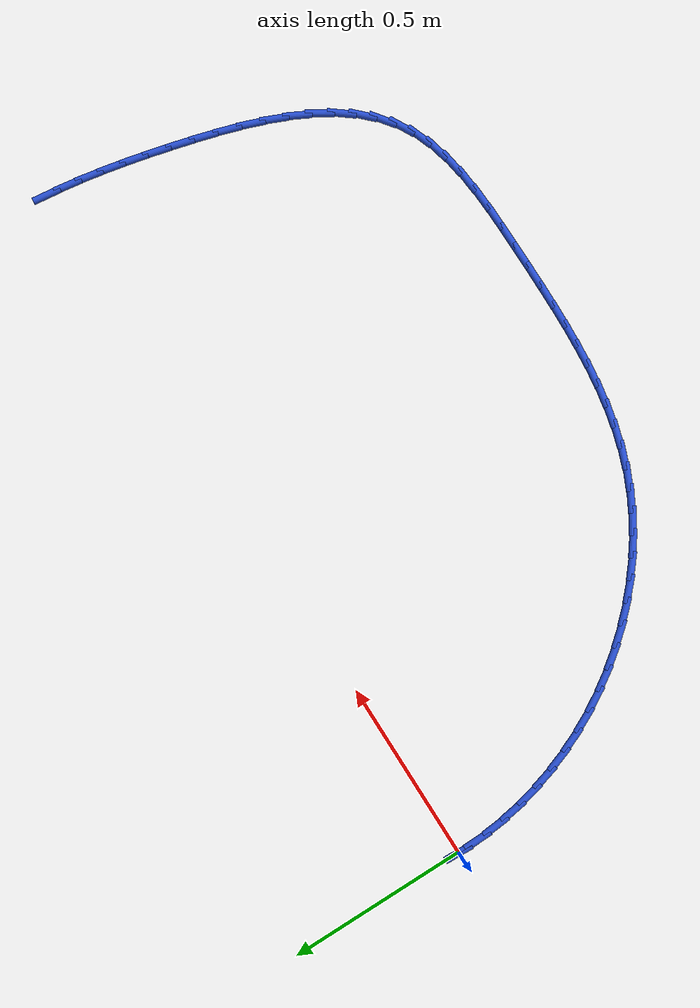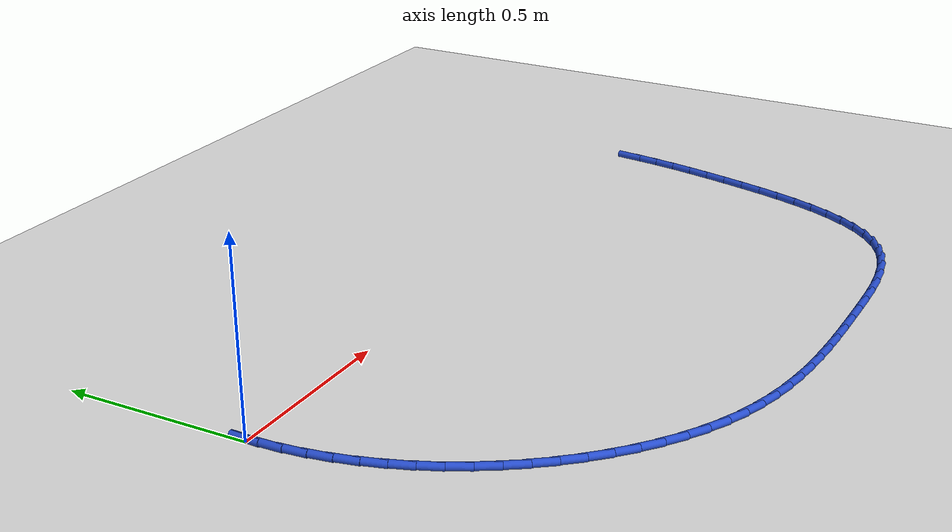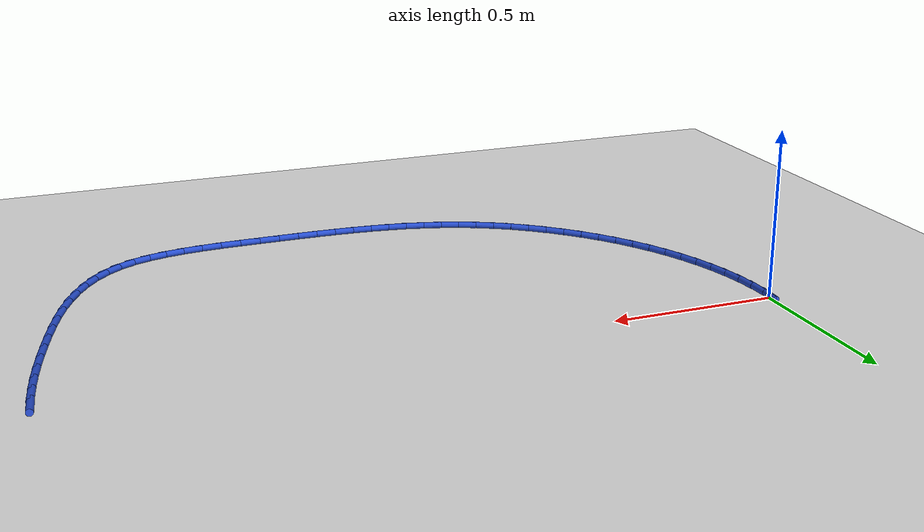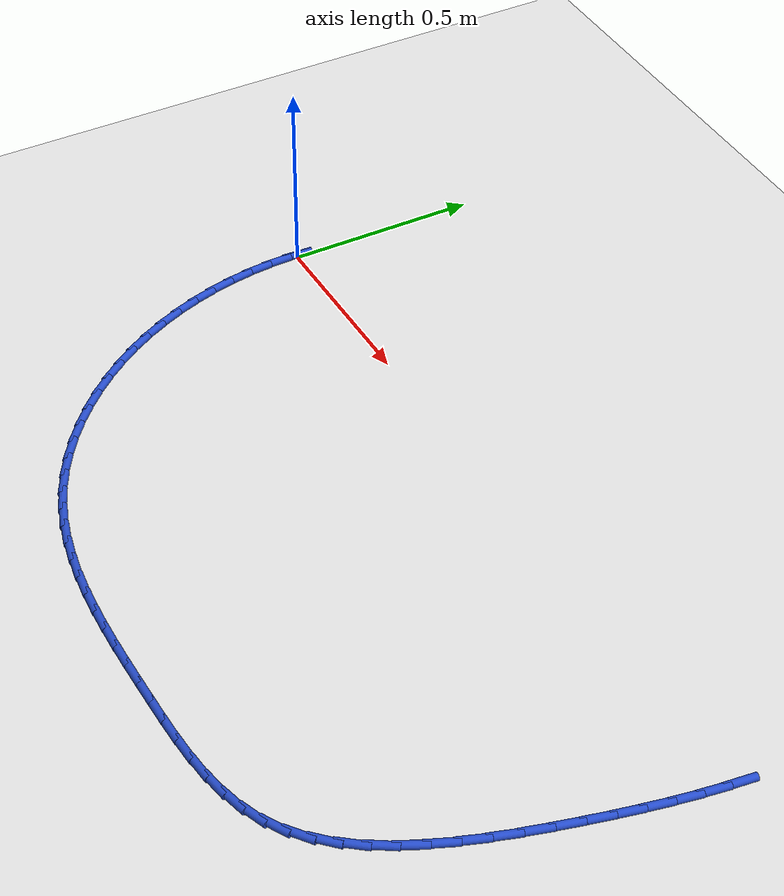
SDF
<sdf version="1.6">
 <world name="default">
  <model name="ground_plane">
   <static>1</static>
   <link name="link">
    <collision name="collision">
     <geometry><plane><normal>0 0 1</normal><size>100 100</size></plane></geometry>
     <surface><friction><ode><mu>100</mu><mu2>50</mu2></ode></friction></surface>
    </collision>
    <visual name="visual">
     <cast_shadows>0</cast_shadows>
     <geometry><plane><normal>0 0 1</normal><size>100 100</size></plane></geometry>
     <material>
      <script><uri>file://media/materials/scripts/gazebo.material</uri><name>Gazebo/WhiteGlow</name></script>
     </material>
    </visual>
   </link>
  </model>
  <model name="line">
   <link name="link_0">
    <pose>3.469446951953614e-17 1.1102230246251565e-16 0.01 0 1.57 1.5262545490121078</pose>
    <collision name="collision">
     <geometry><cylinder><radius>0.01</radius><length>0.08</length></cylinder></geometry>
    </collision>
    <visual name="visual">
     <material>
      <script><name>Gazebo/Blue</name><uri>file://media/materials/scripts/gazebo.material</uri></script>
     </material>
     <geometry><cylinder><radius>0.01</radius><length>0.08</length></cylinder></geometry>
    </visual>
   </link>
   <link name="link_56">
    <pose>2.064700965908474 -0.008207547837002976 0.01 0 1.57 1.4524794912709933</pose>
    <collision name="collision">
     <geometry><cylinder><radius>0.01</radius><length>0.08</length></cylinder></geometry>
    </collision>
    <visual name="visual">
     <material>
      <script><name>Gazebo/Blue</name><uri>file://media/materials/scripts/gazebo.material</uri></script>
     </material>
     <geometry><cylinder><radius>0.01</radius><length>0.08</length></cylinder></geometry>
    </visual>
   </link>
   <link name="link_57">
    <pose>2.0573905796232284 -0.06970549091279976 0.01 0 1.57 1.4186688954242923</pose>
    <collision name="collision">
     <geometry><cylinder><radius>0.01</radius><length>0.08</length></cylinder></geometry>
    </collision>
    <visual name="visual">
     <material>
      <script><name>Gazebo/Blue</name><uri>file://media/materials/scripts/gazebo.material</uri></script>
     </material>
     <geometry><cylinder><radius>0.01</radius><length>0.08</length></cylinder></geometry>
    </visual>
   </link>
   <link name="link_58">
    <pose>2.047861789207606 -0.13185844505326416 0.01 0 1.57 1.389663928427484</pose>
    <collision name="collision">
     <geometry><cylinder><radius>0.01</radius><length>0.08</length></cylinder></geometry>
    </collision>
    <visual name="visual">
     <material>
      <script><name>Gazebo/Blue</name><uri>file://media/materials/scripts/gazebo.material</uri></script>
     </material>
     <geometry><cylinder><radius>0.01</radius><length>0.08</length></cylinder></geometry>
    </visual>
   </link>
   <link name="link_59">
    <pose>2.036372148140233 -0.19459548785910924 0.01 0 1.57 1.3651613671115268</pose>
    <collision name="collision">
     <geometry><cylinder><radius>0.01</radius><length>0.08</length></cylinder></geometry>
    </collision>
    <visual name="visual">
     <material>
      <script><name>Gazebo/Blue</name><uri>file://media/materials/scripts/gazebo.material</uri></script>
     </material>
     <geometry><cylinder><radius>0.01</radius><length>0.08</length></cylinder></geometry>
    </visual>
   </link>
   <link name="link_60">
    <pose>2.0231792098997348 -0.2578456969310451 0.01 0 1.57 1.3448857429082337</pose>
    <collision name="collision">
     <geometry><cylinder><radius>0.01</radius><length>0.08</length></cylinder></geometry>
    </collision>
    <visual name="visual">
     <material>
      <script><name>Gazebo/Blue</name><uri>file://media/materials/scripts/gazebo.material</uri></script>
     </material>
     <geometry><cylinder><radius>0.01</radius><length>0.08</length></cylinder></geometry>
    </visual>
   </link>
   <link name="link_61">
    <pose>2.008540527964736 -0.3215381498697848 0.01 0 1.57 1.328590288155894</pose>
    <collision name="collision">
     <geometry><cylinder><radius>0.01</radius><length>0.08</length></cylinder></geometry>
    </collision>
    <visual name="visual">
     <material>
      <script><name>Gazebo/Blue</name><uri>file://media/materials/scripts/gazebo.material</uri></script>
     </material>
     <geometry><cylinder><radius>0.01</radius><length>0.08</length></cylinder></geometry>
    </visual>
   </link>
   <link name="link_62">
    <pose>1.9927132762824618 -0.3856015364147973 0.01 0 1.57 1.3130658221895595</pose>
    <collision name="collision">
     <geometry><cylinder><radius>0.01</radius><length>0.08</length></cylinder></geometry>
    </collision>
    <visual name="visual">
     <material>
      <script><name>Gazebo/Blue</name><uri>file://media/materials/scripts/gazebo.material</uri></script>
     </material>
     <geometry><cylinder><radius>0.01</radius><length>0.08</length></cylinder></geometry>
    </visual>
   </link>
   <link name="link_63">
    <pose>1.9757915685853005 -0.44979790729359825 0.01 0 1.57 1.2903435314525462</pose>
    <collision name="collision">
     <geometry><cylinder><radius>0.01</radius><length>0.08</length></cylinder></geometry>
    </collision>
    <visual name="visual">
     <material>
      <script><name>Gazebo/Blue</name><uri>file://media/materials/scripts/gazebo.material</uri></script>
     </material>
     <geometry><cylinder><radius>0.01</radius><length>0.08</length></cylinder></geometry>
    </visual>
   </link>
   <link name="link_64">
    <pose>1.9574529943661898 -0.5134636472440807 0.01 0 1.57 1.2585666985986312</pose>
    <collision name="collision">
     <geometry><cylinder><radius>0.01</radius><length>0.08</length></cylinder></geometry>
    </collision>
    <visual name="visual">
     <material>
      <script><name>Gazebo/Blue</name><uri>file://media/materials/scripts/gazebo.material</uri></script>
     </material>
     <geometry><cylinder><radius>0.01</radius><length>0.08</length></cylinder></geometry>
    </visual>
   </link>
   <link name="link_65">
    <pose>1.937309590172493 -0.5758681493220045 0.01 0 1.57 1.2166564524213328</pose>
    <collision name="collision">
     <geometry><cylinder><radius>0.01</radius><length>0.08</length></cylinder></geometry>
    </collision>
    <visual name="visual">
     <material>
      <script><name>Gazebo/Blue</name><uri>file://media/materials/scripts/gazebo.material</uri></script>
     </material>
     <geometry><cylinder><radius>0.01</radius><length>0.08</length></cylinder></geometry>
    </visual>
   </link>
   <link name="link_66">
    <pose>1.914973392551574 -0.6362808065831301 0.01 0 1.57 1.163087759709</pose>
    <collision name="collision">
     <geometry><cylinder><radius>0.01</radius><length>0.08</length></cylinder></geometry>
    </collision>
    <visual name="visual">
     <material>
      <script><name>Gazebo/Blue</name><uri>file://media/materials/scripts/gazebo.material</uri></script>
     </material>
     <geometry><cylinder><radius>0.01</radius><length>0.08</length></cylinder></geometry>
    </visual>
   </link>
   <link name="link_67">
    <pose>1.890056438050796 -0.6939710120832154 0.01 0 1.57 1.095898068814864</pose>
    <collision name="collision">
     <geometry><cylinder><radius>0.01</radius><length>0.08</length></cylinder></geometry>
    </collision>
    <visual name="visual">
     <material>
      <script><name>Gazebo/Blue</name><uri>file://media/materials/scripts/gazebo.material</uri></script>
     </material>
     <geometry><cylinder><radius>0.01</radius><length>0.08</length></cylinder></geometry>
    </visual>
   </link>
   <link name="link_68">
    <pose>1.8621707632175224 -0.7482081588780208 0.01 0 1.57 1.0127872258667208</pose>
    <collision name="collision">
     <geometry><cylinder><radius>0.01</radius><length>0.08</length></cylinder></geometry>
    </collision>
    <visual name="visual">
     <material>
      <script><name>Gazebo/Blue</name><uri>file://media/materials/scripts/gazebo.material</uri></script>
     </material>
     <geometry><cylinder><radius>0.01</radius><length>0.08</length></cylinder></geometry>
    </visual>
   </link>
   <link name="link_69">
    <pose>1.8309284045991177 -0.798261640023305 0.01 0 1.57 0.9114292481807235</pose>
    <collision name="collision">
     <geometry><cylinder><radius>0.01</radius><length>0.08</length></cylinder></geometry>
    </collision>
    <visual name="visual">
     <material>
      <script><name>Gazebo/Blue</name><uri>file://media/materials/scripts/gazebo.material</uri></script>
     </material>
     <geometry><cylinder><radius>0.01</radius><length>0.08</length></cylinder></geometry>
    </visual>
   </link>
   <link name="link_70">
    <pose>1.795941398742944 -0.8434008485748282 0.01 0 1.57 0.7901646157941891</pose>
    <collision name="collision">
     <geometry><cylinder><radius>0.01</radius><length>0.08</length></cylinder></geometry>
    </collision>
    <visual name="visual">
     <material>
      <script><name>Gazebo/Blue</name><uri>file://media/materials/scripts/gazebo.material</uri></script>
     </material>
     <geometry><cylinder><radius>0.01</radius><length>0.08</length></cylinder></geometry>
    </visual>
   </link>
   <link name="link_71">
    <pose>1.756821782196366 -0.8828951775883487 0.01 0 1.57 0.6491772067010905</pose>
    <collision name="collision">
     <geometry><cylinder><radius>0.01</radius><length>0.08</length></cylinder></geometry>
    </collision>
    <visual name="visual">
     <material>
      <script><name>Gazebo/Blue</name><uri>file://media/materials/scripts/gazebo.material</uri></script>
     </material>
     <geometry><cylinder><radius>0.01</radius><length>0.08</length></cylinder></geometry>
    </visual>
   </link>
   <link name="link_72">
    <pose>1.7131815915067468 -0.9160140201196273 0.01 0 1.57 0.494653188606681</pose>
    <collision name="collision">
     <geometry><cylinder><radius>0.01</radius><length>0.08</length></cylinder></geometry>
    </collision>
    <visual name="visual">
     <material>
      <script><name>Gazebo/Blue</name><uri>file://media/materials/scripts/gazebo.material</uri></script>
     </material>
     <geometry><cylinder><radius>0.01</radius><length>0.08</length></cylinder></geometry>
    </visual>
   </link>
   <link name="link_73">
    <pose>1.6647182570995018 -0.9421541780829987 0.01 0 1.57 0.3549905367317802</pose>
    <collision name="collision">
     <geometry><cylinder><radius>0.01</radius><length>0.08</length></cylinder></geometry>
    </collision>
    <visual name="visual">
     <material>
      <script><name>Gazebo/Blue</name><uri>file://media/materials/scripts/gazebo.material</uri></script>
     </material>
     <geometry><cylinder><radius>0.01</radius><length>0.08</length></cylinder></geometry>
    </visual>
   </link>
   <link name="link_74">
    <pose>1.6118308129963979 -0.9617592557564278 0.01 0 1.57 0.24306938376298684</pose>
    <collision name="collision">
     <geometry><cylinder><radius>0.01</radius><length>0.08</length></cylinder></geometry>
    </collision>
    <visual name="visual">
     <material>
      <script><name>Gazebo/Blue</name><uri>file://media/materials/scripts/gazebo.material</uri></script>
     </material>
     <geometry><cylinder><radius>0.01</radius><length>0.08</length></cylinder></geometry>
    </visual>
   </link>
   <link name="link_75">
    <pose>1.555262623487217 -0.9757866029863183 0.01 0 1.57 0.15685229934887338</pose>
    <collision name="collision">
     <geometry><cylinder><radius>0.01</radius><length>0.08</length></cylinder></geometry>
    </collision>
    <visual name="visual">
     <material>
      <script><name>Gazebo/Blue</name><uri>file://media/materials/scripts/gazebo.material</uri></script>
     </material>
     <geometry><cylinder><radius>0.01</radius><length>0.08</length></cylinder></geometry>
    </visual>
   </link>
   <link name="link_76">
    <pose>1.4957594304525643 -0.985197117017786 0.01 0 1.57 0.09300934365073187</pose>
    <collision name="collision">
     <geometry><cylinder><radius>0.01</radius><length>0.08</length></cylinder></geometry>
    </collision>
    <visual name="visual">
     <material>
      <script><name>Gazebo/Blue</name><uri>file://media/materials/scripts/gazebo.material</uri></script>
     </material>
     <geometry><cylinder><radius>0.01</radius><length>0.08</length></cylinder></geometry>
    </visual>
   </link>
   <link name="link_77">
    <pose>1.4340669757730484 -0.9909516950959496 0.01 0 1.57 0.048421646044784744</pose>
    <collision name="collision">
     <geometry><cylinder><radius>0.01</radius><length>0.08</length></cylinder></geometry>
    </collision>
    <visual name="visual">
     <material>
      <script><name>Gazebo/Blue</name><uri>file://media/materials/scripts/gazebo.material</uri></script>
     </material>
     <geometry><cylinder><radius>0.01</radius><length>0.08</length></cylinder></geometry>
    </visual>
   </link>
   <link name="link_78">
    <pose>1.3709310013292733 -0.9940112344659253 0.01 0 1.57 0.02076029439149285</pose>
    <collision name="collision">
     <geometry><cylinder><radius>0.01</radius><length>0.08</length></cylinder></geometry>
    </collision>
    <visual name="visual">
     <material>
      <script><name>Gazebo/Blue</name><uri>file://media/materials/scripts/gazebo.material</uri></script>
     </material>
     <geometry><cylinder><radius>0.01</radius><length>0.08</length></cylinder></geometry>
    </visual>
   </link>
   <link name="link_79">
    <pose>1.307097249001847 -0.9953366323728308 0.01 0 1.57 0.008594796492317511</pose>
    <collision name="collision">
     <geometry><cylinder><radius>0.01</radius><length>0.08</length></cylinder></geometry>
    </collision>
    <visual name="visual">
     <material>
      <script><name>Gazebo/Blue</name><uri>file://media/materials/scripts/gazebo.material</uri></script>
     </material>
     <geometry><cylinder><radius>0.01</radius><length>0.08</length></cylinder></geometry>
    </visual>
   </link>
   <link name="link_80">
    <pose>1.2433093912289443 -0.9958848895291512 0.01 0 1.57 0.00481167228422199</pose>
    <collision name="collision">
     <geometry><cylinder><radius>0.01</radius><length>0.08</length></cylinder></geometry>
    </collision>
    <visual name="visual">
     <material>
      <script><name>Gazebo/Blue</name><uri>file://media/materials/scripts/gazebo.material</uri></script>
     </material>
     <geometry><cylinder><radius>0.01</radius><length>0.08</length></cylinder></geometry>
    </visual>
   </link>
   <link name="link_81">
    <pose>1.180085965498579 -0.9961891022821857 0.01 0 1.57 -0.003286136586555846</pose>
    <collision name="collision">
     <geometry><cylinder><radius>0.01</radius><length>0.08</length></cylinder></geometry>
    </collision>
    <visual name="visual">
     <material>
      <script><name>Gazebo/Blue</name><uri>file://media/materials/scripts/gazebo.material</uri></script>
     </material>
     <geometry><cylinder><radius>0.01</radius><length>0.08</length></cylinder></geometry>
    </visual>
   </link>
   <link name="link_82">
    <pose>1.1175212350973296 -0.995983505292526 0.01 0 1.57 -0.017289878998022857</pose>
    <collision name="collision">
     <geometry><cylinder><radius>0.01</radius><length>0.08</length></cylinder></geometry>
    </collision>
    <visual name="visual">
     <material>
      <script><name>Gazebo/Blue</name><uri>file://media/materials/scripts/gazebo.material</uri></script>
     </material>
     <geometry><cylinder><radius>0.01</radius><length>0.08</length></cylinder></geometry>
    </visual>
   </link>
   <link name="link_83">
    <pose>1.05566247973475 -0.9949138683094846 0.01 0 1.57 -0.037424437497450586</pose>
    <collision name="collision">
     <geometry><cylinder><radius>0.01</radius><length>0.08</length></cylinder></geometry>
    </collision>
    <visual name="visual">
     <material>
      <script><name>Gazebo/Blue</name><uri>file://media/materials/scripts/gazebo.material</uri></script>
     </material>
     <geometry><cylinder><radius>0.01</radius><length>0.08</length></cylinder></geometry>
    </visual>
   </link>
   <link name="link_84">
    <pose>0.9945569791203996 -0.992625961082377 0.01 0 1.57 -0.0639275290393247</pose>
    <collision name="collision">
     <geometry><cylinder><radius>0.01</radius><length>0.08</length></cylinder></geometry>
    </collision>
    <visual name="visual">
     <material>
      <script><name>Gazebo/Blue</name><uri>file://media/materials/scripts/gazebo.material</uri></script>
     </material>
     <geometry><cylinder><radius>0.01</radius><length>0.08</length></cylinder></geometry>
    </visual>
   </link>
   <link name="link_85">
    <pose>0.9342520129638335 -0.988765553360517 0.01 0 1.57 -0.09702729202054897</pose>
    <collision name="collision">
     <geometry><cylinder><radius>0.01</radius><length>0.08</length></cylinder></geometry>
    </collision>
    <visual name="visual">
     <material>
      <script><name>Gazebo/Blue</name><uri>file://media/materials/scripts/gazebo.material</uri></script>
     </material>
     <geometry><cylinder><radius>0.01</radius><length>0.08</length></cylinder></geometry>
    </visual>
   </link>
   <link name="link_86">
    <pose>0.8747948609746097 -0.9829784148932181 0.01 0 1.57 -0.13690822191373303</pose>
    <collision name="collision">
     <geometry><cylinder><radius>0.01</radius><length>0.08</length></cylinder></geometry>
    </collision>
    <visual name="visual">
     <material>
      <script><name>Gazebo/Blue</name><uri>file://media/materials/scripts/gazebo.material</uri></script>
     </material>
     <geometry><cylinder><radius>0.01</radius><length>0.08</length></cylinder></geometry>
    </visual>
   </link>
   <link name="link_87">
    <pose>0.8162328028622833 -0.9749103154297951 0.01 0 1.57 -0.18366413563953318</pose>
    <collision name="collision">
     <geometry><cylinder><radius>0.01</radius><length>0.08</length></cylinder></geometry>
    </collision>
    <visual name="visual">
     <material>
      <script><name>Gazebo/Blue</name><uri>file://media/materials/scripts/gazebo.material</uri></script>
     </material>
     <geometry><cylinder><radius>0.01</radius><length>0.08</length></cylinder></geometry>
    </visual>
   </link>
   <link name="link_88">
    <pose>0.758613118336412 -0.9642070247195615 0.01 0 1.57 -0.23723908809532054</pose>
    <collision name="collision">
     <geometry><cylinder><radius>0.01</radius><length>0.08</length></cylinder></geometry>
    </collision>
    <visual name="visual">
     <material>
      <script><name>Gazebo/Blue</name><uri>file://media/materials/scripts/gazebo.material</uri></script>
     </material>
     <geometry><cylinder><radius>0.01</radius><length>0.08</length></cylinder></geometry>
    </visual>
   </link>
   <link name="link_89">
    <pose>0.7019830871065517 -0.950514312511832 0.01 0 1.57 -0.29736135232235833</pose>
    <collision name="collision">
     <geometry><cylinder><radius>0.01</radius><length>0.08</length></cylinder></geometry>
    </collision>
    <visual name="visual">
     <material>
      <script><name>Gazebo/Blue</name><uri>file://media/materials/scripts/gazebo.material</uri></script>
     </material>
     <geometry><cylinder><radius>0.01</radius><length>0.08</length></cylinder></geometry>
    </visual>
   </link>
   <link name="link_90">
    <pose>0.6463899888822598 -0.9334779485559206 0.01 0 1.57 -0.3634815212995174</pose>
    <collision name="collision">
     <geometry><cylinder><radius>0.01</radius><length>0.08</length></cylinder></geometry>
    </collision>
    <visual name="visual">
     <material>
      <script><name>Gazebo/Blue</name><uri>file://media/materials/scripts/gazebo.material</uri></script>
     </material>
     <geometry><cylinder><radius>0.01</radius><length>0.08</length></cylinder></geometry>
    </visual>
   </link>
   <link name="link_91">
    <pose>0.5918811033730922 -0.9127437026011412 0.01 0 1.57 -0.43388902254052925</pose>
    <collision name="collision">
     <geometry><cylinder><radius>0.01</radius><length>0.08</length></cylinder></geometry>
    </collision>
    <visual name="visual">
     <material>
      <script><name>Gazebo/Blue</name><uri>file://media/materials/scripts/gazebo.material</uri></script>
     </material>
     <geometry><cylinder><radius>0.01</radius><length>0.08</length></cylinder></geometry>
    </visual>
   </link>
   <link name="link_92">
    <pose>0.5385224721762343 -0.8880207027284183 0.01 0 1.57 -0.5029092170900065</pose>
    <collision name="collision">
     <geometry><cylinder><radius>0.01</radius><length>0.08</length></cylinder></geometry>
    </collision>
    <visual name="visual">
     <material>
      <script><name>Gazebo/Blue</name><uri>file://media/materials/scripts/gazebo.material</uri></script>
     </material>
     <geometry><cylinder><radius>0.01</radius><length>0.08</length></cylinder></geometry>
    </visual>
   </link>
   <link name="link_93">
    <pose>0.4864932856074582 -0.8594001768465703 0.01 0 1.57 -0.5690060329526153</pose>
    <collision name="collision">
     <geometry><cylinder><radius>0.01</radius><length>0.08</length></cylinder></geometry>
    </collision>
    <visual name="visual">
     <material>
      <script><name>Gazebo/Blue</name><uri>file://media/materials/scripts/gazebo.material</uri></script>
     </material>
     <geometry><cylinder><radius>0.01</radius><length>0.08</length></cylinder></geometry>
    </visual>
   </link>
   <link name="link_94">
    <pose>0.4360149420674603 -0.8271158883008367 0.01 0 1.57 -0.6326992866863974</pose>
    <collision name="collision">
     <geometry><cylinder><radius>0.01</radius><length>0.08</length></cylinder></geometry>
    </collision>
    <visual name="visual">
     <material>
      <script><name>Gazebo/Blue</name><uri>file://media/materials/scripts/gazebo.material</uri></script>
     </material>
     <geometry><cylinder><radius>0.01</radius><length>0.08</length></cylinder></geometry>
    </visual>
   </link>
   <link name="link_95">
    <pose>0.3873089120685718 -0.7914018439552912 0.01 0 1.57 -0.6945224691310115</pose>
    <collision name="collision">
     <geometry><cylinder><radius>0.01</radius><length>0.08</length></cylinder></geometry>
    </collision>
    <visual name="visual">
     <material>
      <script><name>Gazebo/Blue</name><uri>file://media/materials/scripts/gazebo.material</uri></script>
     </material>
     <geometry><cylinder><radius>0.01</radius><length>0.08</length></cylinder></geometry>
    </visual>
   </link>
   <link name="link_96">
    <pose>0.34059666612312683 -0.7524920506740105 0.01 0 1.57 -0.7550092256178644</pose>
    <collision name="collision">
     <geometry><cylinder><radius>0.01</radius><length>0.08</length></cylinder></geometry>
    </collision>
    <visual name="visual">
     <material>
      <script><name>Gazebo/Blue</name><uri>file://media/materials/scripts/gazebo.material</uri></script>
     </material>
     <geometry><cylinder><radius>0.01</radius><length>0.08</length></cylinder></geometry>
    </visual>
   </link>
   <link name="link_97">
    <pose>0.2960996747434572 -0.7106205153210692 0.01 0 1.57 -0.8146883976137519</pose>
    <collision name="collision">
     <geometry><cylinder><radius>0.01</radius><length>0.08</length></cylinder></geometry>
    </collision>
    <visual name="visual">
     <material>
      <script><name>Gazebo/Blue</name><uri>file://media/materials/scripts/gazebo.material</uri></script>
     </material>
     <geometry><cylinder><radius>0.01</radius><length>0.08</length></cylinder></geometry>
    </visual>
   </link>
   <link name="link_98">
    <pose>0.2540394084418953 -0.6660212447605421 0.01 0 1.57 -0.8740824645948247</pose>
    <collision name="collision">
     <geometry><cylinder><radius>0.01</radius><length>0.08</length></cylinder></geometry>
    </collision>
    <visual name="visual">
     <material>
      <script><name>Gazebo/Blue</name><uri>file://media/materials/scripts/gazebo.material</uri></script>
     </material>
     <geometry><cylinder><radius>0.01</radius><length>0.08</length></cylinder></geometry>
    </visual>
   </link>
   <link name="link_99">
    <pose>0.2146373377307747 -0.6189282458565053 0.01 0 1.57 -0.9337077789104836</pose>
    <collision name="collision">
     <geometry><cylinder><radius>0.01</radius><length>0.08</length></cylinder></geometry>
    </collision>
    <visual name="visual">
     <material>
      <script><name>Gazebo/Blue</name><uri>file://media/materials/scripts/gazebo.material</uri></script>
     </material>
     <geometry><cylinder><radius>0.01</radius><length>0.08</length></cylinder></geometry>
    </visual>
   </link>
   <link name="link_100">
    <pose>0.17811493312242718 -0.5695755254730331 0.01 0 1.57 -0.9940516716481493</pose>
    <collision name="collision">
     <geometry><cylinder><radius>0.01</radius><length>0.08</length></cylinder></geometry>
    </collision>
    <visual name="visual">
     <material>
      <script><name>Gazebo/Blue</name><uri>file://media/materials/scripts/gazebo.material</uri></script>
     </material>
     <geometry><cylinder><radius>0.01</radius><length>0.08</length></cylinder></geometry>
    </visual>
   </link>
   <link name="link_101">
    <pose>0.1446917402404499 -0.5181967780846075 0.01 0 1.57 -1.0548098958021943</pose>
    <collision name="collision">
     <geometry><cylinder><radius>0.01</radius><length>0.08</length></cylinder></geometry>
    </collision>
    <visual name="visual">
     <material>
      <script><name>Gazebo/Blue</name><uri>file://media/materials/scripts/gazebo.material</uri></script>
     </material>
     <geometry><cylinder><radius>0.01</radius><length>0.08</length></cylinder></geometry>
    </visual>
   </link>
   <link name="link_102">
    <pose>0.11452499072686131 -0.4650155852490215 0.01 0 1.57 -1.1153411099333246</pose>
    <collision name="collision">
     <geometry><cylinder><radius>0.01</radius><length>0.08</length></cylinder></geometry>
    </collision>
    <visual name="visual">
     <material>
      <script><name>Gazebo/Blue</name><uri>file://media/materials/scripts/gazebo.material</uri></script>
     </material>
     <geometry><cylinder><radius>0.01</radius><length>0.08</length></cylinder></geometry>
    </visual>
   </link>
   <link name="link_103">
    <pose>0.08769754525522716 -0.41024345888273306 0.01 0 1.57 -1.1758099666813275</pose>
    <collision name="collision">
     <geometry><cylinder><radius>0.01</radius><length>0.08</length></cylinder></geometry>
    </collision>
    <visual name="visual">
     <material>
      <script><name>Gazebo/Blue</name><uri>file://media/materials/scripts/gazebo.material</uri></script>
     </material>
     <geometry><cylinder><radius>0.01</radius><length>0.08</length></cylinder></geometry>
    </visual>
   </link>
   <link name="link_104">
    <pose>0.06428790453830276 -0.35409120332551447 0.01 0 1.57 -1.2364424706926849</pose>
    <collision name="collision">
     <geometry><cylinder><radius>0.01</radius><length>0.08</length></cylinder></geometry>
    </collision>
    <visual name="visual">
     <material>
      <script><name>Gazebo/Blue</name><uri>file://media/materials/scripts/gazebo.material</uri></script>
     </material>
     <geometry><cylinder><radius>0.01</radius><length>0.08</length></cylinder></geometry>
    </visual>
   </link>
   <link name="link_105">
    <pose>0.04437456928884456 -0.29676962291714054 0.01 0 1.57 -1.2974678266117288</pose>
    <collision name="collision">
     <geometry><cylinder><radius>0.01</radius><length>0.08</length></cylinder></geometry>
    </collision>
    <visual name="visual">
     <material>
      <script><name>Gazebo/Blue</name><uri>file://media/materials/scripts/gazebo.material</uri></script>
     </material>
     <geometry><cylinder><radius>0.01</radius><length>0.08</length></cylinder></geometry>
    </visual>
   </link>
   <link name="link_106">
    <pose>0.028036040219608063 -0.23848952199738338 0.01 0 1.57 -1.3591134140476144</pose>
    <collision name="collision">
     <geometry><cylinder><radius>0.01</radius><length>0.08</length></cylinder></geometry>
    </collision>
    <visual name="visual">
     <material>
      <script><name>Gazebo/Blue</name><uri>file://media/materials/scripts/gazebo.material</uri></script>
     </material>
     <geometry><cylinder><radius>0.01</radius><length>0.08</length></cylinder></geometry>
    </visual>
   </link>
   <link name="link_107">
    <pose>0.015350818043349554 -0.17946170490601787 0.01 0 1.57 -1.42159927156466</pose>
    <collision name="collision">
     <geometry><cylinder><radius>0.01</radius><length>0.08</length></cylinder></geometry>
    </collision>
    <visual name="visual">
     <material>
      <script><name>Gazebo/Blue</name><uri>file://media/materials/scripts/gazebo.material</uri></script>
     </material>
     <geometry><cylinder><radius>0.01</radius><length>0.08</length></cylinder></geometry>
    </visual>
   </link>
   <link name="link_108">
    <pose>0.006397403472824676 -0.11989697598281601 0.01 0 1.57 -1.4851318134707472</pose>
    <collision name="collision">
     <geometry><cylinder><radius>0.01</radius><length>0.08</length></cylinder></geometry>
    </collision>
    <visual name="visual">
     <material>
      <script><name>Gazebo/Blue</name><uri>file://media/materials/scripts/gazebo.material</uri></script>
     </material>
     <geometry><cylinder><radius>0.01</radius><length>0.08</length></cylinder></geometry>
    </visual>
   </link>
   <link name="link_109">
    <pose>0.0012542972207895756 -0.06000613956755274 0.01 0 1.57 -1.549896555560637</pose>
    <collision name="collision">
     <geometry><cylinder><radius>0.01</radius><length>0.08</length></cylinder></geometry>
    </collision>
    <visual name="visual">
     <material>
      <script><name>Gazebo/Blue</name><uri>file://media/materials/scripts/gazebo.material</uri></script>
     </material>
     <geometry><cylinder><radius>0.01</radius><length>0.08</length></cylinder></geometry>
    </visual>
   </link>
   <link name="link_110">
    <pose>4.85722573273506e-17 -1.249000902703301e-16 0.01 0 1.57 1.525542923100905</pose>
    <collision name="collision">
     <geometry><cylinder><radius>0.01</radius><length>0.08</length></cylinder></geometry>
    </collision>
    <visual name="visual">
     <material>
      <script><name>Gazebo/Blue</name><uri>file://media/materials/scripts/gazebo.material</uri></script>
     </material>
     <geometry><cylinder><radius>0.01</radius><length>0.08</length></cylinder></geometry>
    </visual>
   </link>
  </model>
 </world>
</sdf>
